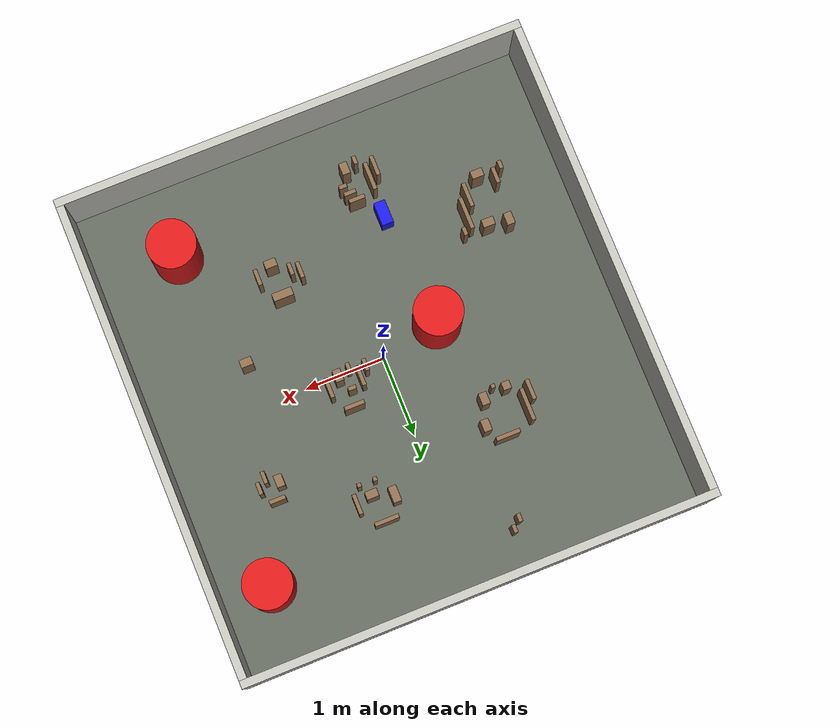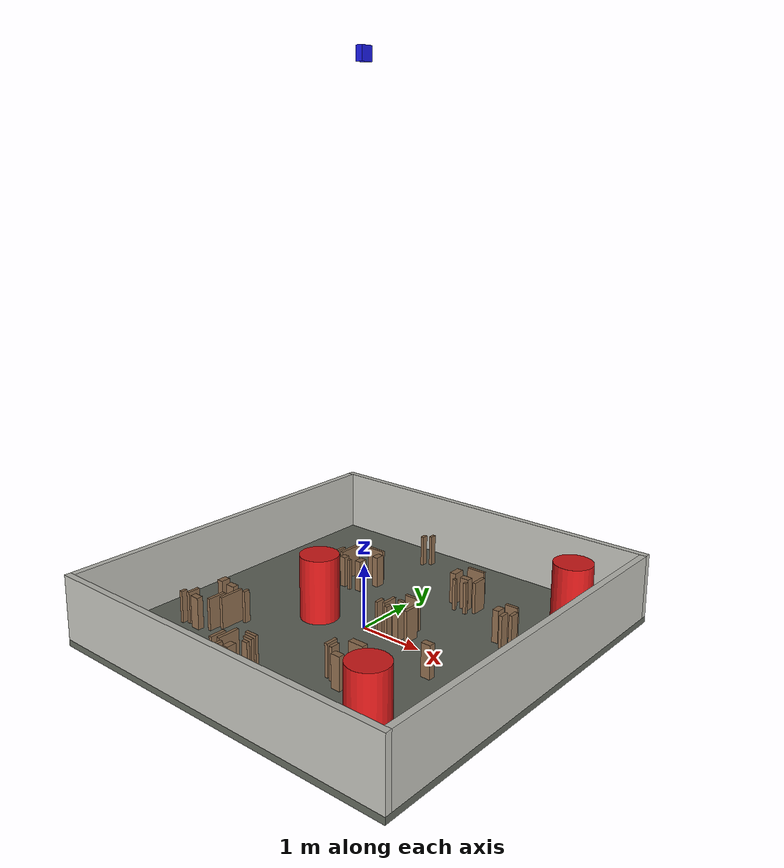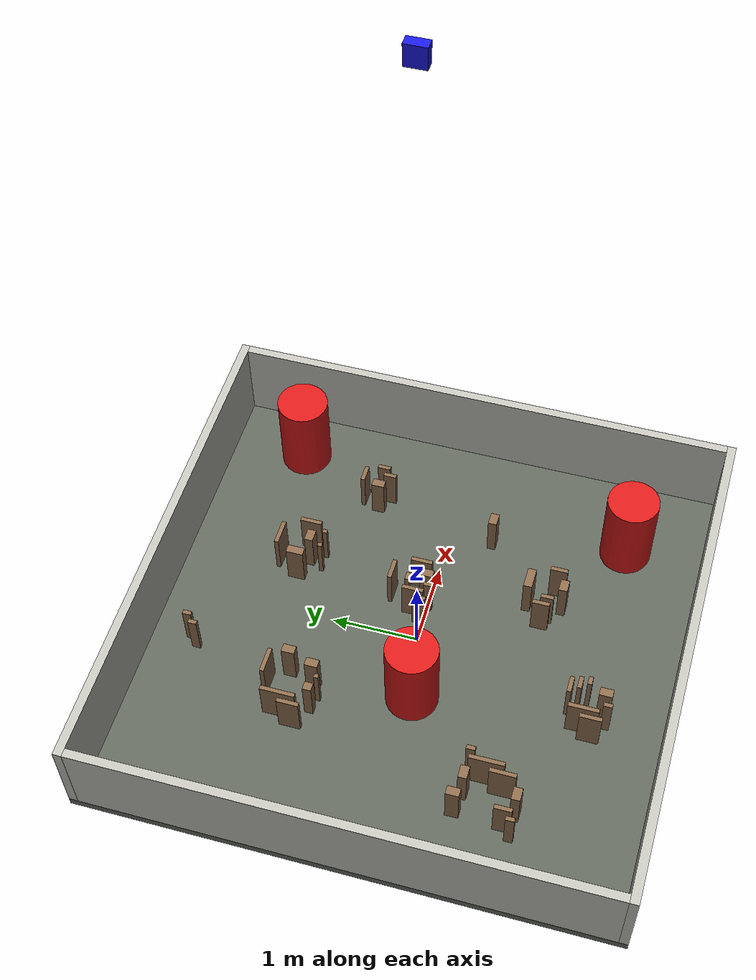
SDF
<?xml version="1.0" ?>
<!-- yellow_test.pgm SLAM 지도에서 자동 생성 -->
<!-- 방 내부 실측 2.85 x 2.95 m -> 확장 5.70 x 5.90 m (넓이 x4) -->
<!-- 로봇 스폰 권장 좌표: x=-2.350 y=-2.250  (SLAM 원점 대응점: -2.770, -2.830) -->
<sdf version="1.6">
  <world name="slam_room">
    <physics type="ode">
      <max_step_size>0.002</max_step_size>
      <real_time_update_rate>500</real_time_update_rate>
    </physics>
    <scene>
      <ambient>0.5 0.5 0.5 1</ambient>
      <background>0.7 0.75 0.8 1</background>
      <shadows>false</shadows>
    </scene>
    <include><uri>model://sun</uri></include>
    <gui><camera name='user_camera'>
      <pose>-5.13 -5.31 5.31 0 0.85 2.4</pose>
    </camera></gui>

    <model name='floor'>
      <static>true</static>
      <pose>0.0000 0.0000 -0.0500 0 0 0</pose>
      <link name='link'>
        <collision name='c'>
          <geometry><box><size>5.9000 6.1000 0.1000</size></box></geometry>
        </collision>
        <visual name='v'>
          <geometry><box><size>5.9000 6.1000 0.1000</size></box></geometry>
          <material>
            <ambient>0.38 0.40 0.36 1</ambient><diffuse>0.38 0.40 0.36 1</diffuse>
            <specular>0.1 0.1 0.1 1</specular>
          </material>
        </visual>
      </link>
    </model>
    <model name='wall_north'>
      <static>true</static>
      <pose>0.0000 3.0000 0.5000 0 0 0</pose>
      <link name='link'>
        <collision name='c'>
          <geometry><box><size>5.9000 0.1000 1.0000</size></box></geometry>
        </collision>
        <visual name='v'>
          <geometry><box><size>5.9000 0.1000 1.0000</size></box></geometry>
          <material>
            <ambient>0.75 0.75 0.72 1</ambient><diffuse>0.75 0.75 0.72 1</diffuse>
            <specular>0.1 0.1 0.1 1</specular>
          </material>
        </visual>
      </link>
    </model>
    <model name='wall_south'>
      <static>true</static>
      <pose>0.0000 -3.0000 0.5000 0 0 0</pose>
      <link name='link'>
        <collision name='c'>
          <geometry><box><size>5.9000 0.1000 1.0000</size></box></geometry>
        </collision>
        <visual name='v'>
          <geometry><box><size>5.9000 0.1000 1.0000</size></box></geometry>
          <material>
            <ambient>0.75 0.75 0.72 1</ambient><diffuse>0.75 0.75 0.72 1</diffuse>
            <specular>0.1 0.1 0.1 1</specular>
          </material>
        </visual>
      </link>
    </model>
    <model name='wall_east'>
      <static>true</static>
      <pose>2.9000 0.0000 0.5000 0 0 0</pose>
      <link name='link'>
        <collision name='c'>
          <geometry><box><size>0.1000 5.9000 1.0000</size></box></geometry>
        </collision>
        <visual name='v'>
          <geometry><box><size>0.1000 5.9000 1.0000</size></box></geometry>
          <material>
            <ambient>0.75 0.75 0.72 1</ambient><diffuse>0.75 0.75 0.72 1</diffuse>
            <specular>0.1 0.1 0.1 1</specular>
          </material>
        </visual>
      </link>
    </model>
    <model name='wall_west'>
      <static>true</static>
      <pose>-2.9000 0.0000 0.5000 0 0 0</pose>
      <link name='link'>
        <collision name='c'>
          <geometry><box><size>0.1000 5.9000 1.0000</size></box></geometry>
        </collision>
        <visual name='v'>
          <geometry><box><size>0.1000 5.9000 1.0000</size></box></geometry>
          <material>
            <ambient>0.75 0.75 0.72 1</ambient><diffuse>0.75 0.75 0.72 1</diffuse>
            <specular>0.1 0.1 0.1 1</specular>
          </material>
        </visual>
      </link>
    </model>
    <model name='obstacle_000'>
      <static>true</static>
      <pose>-0.6500 2.5000 0.2500 0 0 0</pose>
      <link name='link'>
        <collision name='c'>
          <geometry><box><size>0.0500 0.1000 0.5000</size></box></geometry>
        </collision>
        <visual name='v'>
          <geometry><box><size>0.0500 0.1000 0.5000</size></box></geometry>
          <material>
            <ambient>0.55 0.42 0.30 1</ambient><diffuse>0.55 0.42 0.30 1</diffuse>
            <specular>0.1 0.1 0.1 1</specular>
          </material>
        </visual>
      </link>
    </model>
    <model name='obstacle_001'>
      <static>true</static>
      <pose>-0.7500 2.4000 0.2500 0 0 0</pose>
      <link name='link'>
        <collision name='c'>
          <geometry><box><size>0.0500 0.1000 0.5000</size></box></geometry>
        </collision>
        <visual name='v'>
          <geometry><box><size>0.0500 0.1000 0.5000</size></box></geometry>
          <material>
            <ambient>0.55 0.42 0.30 1</ambient><diffuse>0.55 0.42 0.30 1</diffuse>
            <specular>0.1 0.1 0.1 1</specular>
          </material>
        </visual>
      </link>
    </model>
    <model name='obstacle_002'>
      <static>true</static>
      <pose>0.7000 1.8500 0.2500 0 0 0</pose>
      <link name='link'>
        <collision name='c'>
          <geometry><box><size>0.3000 0.0500 0.5000</size></box></geometry>
        </collision>
        <visual name='v'>
          <geometry><box><size>0.3000 0.0500 0.5000</size></box></geometry>
          <material>
            <ambient>0.55 0.42 0.30 1</ambient><diffuse>0.55 0.42 0.30 1</diffuse>
            <specular>0.1 0.1 0.1 1</specular>
          </material>
        </visual>
      </link>
    </model>
    <model name='obstacle_003'>
      <static>true</static>
      <pose>0.5000 1.6000 0.2500 0 0 0</pose>
      <link name='link'>
        <collision name='c'>
          <geometry><box><size>0.1000 0.2000 0.5000</size></box></geometry>
        </collision>
        <visual name='v'>
          <geometry><box><size>0.1000 0.2000 0.5000</size></box></geometry>
          <material>
            <ambient>0.55 0.42 0.30 1</ambient><diffuse>0.55 0.42 0.30 1</diffuse>
            <specular>0.1 0.1 0.1 1</specular>
          </material>
        </visual>
      </link>
    </model>
    <model name='obstacle_004'>
      <static>true</static>
      <pose>0.9500 1.5500 0.2500 0 0 0</pose>
      <link name='link'>
        <collision name='c'>
          <geometry><box><size>0.0500 0.2500 0.5000</size></box></geometry>
        </collision>
        <visual name='v'>
          <geometry><box><size>0.0500 0.2500 0.5000</size></box></geometry>
          <material>
            <ambient>0.55 0.42 0.30 1</ambient><diffuse>0.55 0.42 0.30 1</diffuse>
            <specular>0.1 0.1 0.1 1</specular>
          </material>
        </visual>
      </link>
    </model>
    <model name='obstacle_005'>
      <static>true</static>
      <pose>-1.3500 1.2000 0.2500 0 0 0</pose>
      <link name='link'>
        <collision name='c'>
          <geometry><box><size>0.0500 0.4000 0.5000</size></box></geometry>
        </collision>
        <visual name='v'>
          <geometry><box><size>0.0500 0.4000 0.5000</size></box></geometry>
          <material>
            <ambient>0.55 0.42 0.30 1</ambient><diffuse>0.55 0.42 0.30 1</diffuse>
            <specular>0.1 0.1 0.1 1</specular>
          </material>
        </visual>
      </link>
    </model>
    <model name='obstacle_006'>
      <static>true</static>
      <pose>0.7500 1.5000 0.2500 0 0 0</pose>
      <link name='link'>
        <collision name='c'>
          <geometry><box><size>0.1500 0.1000 0.5000</size></box></geometry>
        </collision>
        <visual name='v'>
          <geometry><box><size>0.1500 0.1000 0.5000</size></box></geometry>
          <material>
            <ambient>0.55 0.42 0.30 1</ambient><diffuse>0.55 0.42 0.30 1</diffuse>
            <specular>0.1 0.1 0.1 1</specular>
          </material>
        </visual>
      </link>
    </model>
    <model name='obstacle_007'>
      <static>true</static>
      <pose>-1.0000 1.4500 0.2500 0 0 0</pose>
      <link name='link'>
        <collision name='c'>
          <geometry><box><size>0.3000 0.0500 0.5000</size></box></geometry>
        </collision>
        <visual name='v'>
          <geometry><box><size>0.3000 0.0500 0.5000</size></box></geometry>
          <material>
            <ambient>0.55 0.42 0.30 1</ambient><diffuse>0.55 0.42 0.30 1</diffuse>
            <specular>0.1 0.1 0.1 1</specular>
          </material>
        </visual>
      </link>
    </model>
    <model name='obstacle_008'>
      <static>true</static>
      <pose>-0.8000 1.2500 0.2500 0 0 0</pose>
      <link name='link'>
        <collision name='c'>
          <geometry><box><size>0.1000 0.1500 0.5000</size></box></geometry>
        </collision>
        <visual name='v'>
          <geometry><box><size>0.1000 0.1500 0.5000</size></box></geometry>
          <material>
            <ambient>0.55 0.42 0.30 1</ambient><diffuse>0.55 0.42 0.30 1</diffuse>
            <specular>0.1 0.1 0.1 1</specular>
          </material>
        </visual>
      </link>
    </model>
    <model name='obstacle_009'>
      <static>true</static>
      <pose>0.6500 1.3500 0.2500 0 0 0</pose>
      <link name='link'>
        <collision name='c'>
          <geometry><box><size>0.0500 0.0500 0.5000</size></box></geometry>
        </collision>
        <visual name='v'>
          <geometry><box><size>0.0500 0.0500 0.5000</size></box></geometry>
          <material>
            <ambient>0.55 0.42 0.30 1</ambient><diffuse>0.55 0.42 0.30 1</diffuse>
            <specular>0.1 0.1 0.1 1</specular>
          </material>
        </visual>
      </link>
    </model>
    <model name='obstacle_010'>
      <static>true</static>
      <pose>0.8500 1.3500 0.2500 0 0 0</pose>
      <link name='link'>
        <collision name='c'>
          <geometry><box><size>0.0500 0.0500 0.5000</size></box></geometry>
        </collision>
        <visual name='v'>
          <geometry><box><size>0.0500 0.0500 0.5000</size></box></geometry>
          <material>
            <ambient>0.55 0.42 0.30 1</ambient><diffuse>0.55 0.42 0.30 1</diffuse>
            <specular>0.1 0.1 0.1 1</specular>
          </material>
        </visual>
      </link>
    </model>
    <model name='obstacle_011'>
      <static>true</static>
      <pose>-1.4500 1.0500 0.2500 0 0 0</pose>
      <link name='link'>
        <collision name='c'>
          <geometry><box><size>0.0500 0.2500 0.5000</size></box></geometry>
        </collision>
        <visual name='v'>
          <geometry><box><size>0.0500 0.2500 0.5000</size></box></geometry>
          <material>
            <ambient>0.55 0.42 0.30 1</ambient><diffuse>0.55 0.42 0.30 1</diffuse>
            <specular>0.1 0.1 0.1 1</specular>
          </material>
        </visual>
      </link>
    </model>
    <model name='obstacle_012'>
      <static>true</static>
      <pose>1.8000 1.1500 0.2500 0 0 0</pose>
      <link name='link'>
        <collision name='c'>
          <geometry><box><size>0.2000 0.0500 0.5000</size></box></geometry>
        </collision>
        <visual name='v'>
          <geometry><box><size>0.2000 0.0500 0.5000</size></box></geometry>
          <material>
            <ambient>0.55 0.42 0.30 1</ambient><diffuse>0.55 0.42 0.30 1</diffuse>
            <specular>0.1 0.1 0.1 1</specular>
          </material>
        </visual>
      </link>
    </model>
    <model name='obstacle_013'>
      <static>true</static>
      <pose>-0.9000 0.9500 0.2500 0 0 0</pose>
      <link name='link'>
        <collision name='c'>
          <geometry><box><size>0.1000 0.1500 0.5000</size></box></geometry>
        </collision>
        <visual name='v'>
          <geometry><box><size>0.1000 0.1500 0.5000</size></box></geometry>
          <material>
            <ambient>0.55 0.42 0.30 1</ambient><diffuse>0.55 0.42 0.30 1</diffuse>
            <specular>0.1 0.1 0.1 1</specular>
          </material>
        </visual>
      </link>
    </model>
    <model name='obstacle_014'>
      <static>true</static>
      <pose>1.7000 0.9500 0.2500 0 0 0</pose>
      <link name='link'>
        <collision name='c'>
          <geometry><box><size>0.1000 0.1500 0.5000</size></box></geometry>
        </collision>
        <visual name='v'>
          <geometry><box><size>0.1000 0.1500 0.5000</size></box></geometry>
          <material>
            <ambient>0.55 0.42 0.30 1</ambient><diffuse>0.55 0.42 0.30 1</diffuse>
            <specular>0.1 0.1 0.1 1</specular>
          </material>
        </visual>
      </link>
    </model>
    <model name='obstacle_015'>
      <static>true</static>
      <pose>1.9500 0.9500 0.2500 0 0 0</pose>
      <link name='link'>
        <collision name='c'>
          <geometry><box><size>0.0500 0.1500 0.5000</size></box></geometry>
        </collision>
        <visual name='v'>
          <geometry><box><size>0.0500 0.1500 0.5000</size></box></geometry>
          <material>
            <ambient>0.55 0.42 0.30 1</ambient><diffuse>0.55 0.42 0.30 1</diffuse>
            <specular>0.1 0.1 0.1 1</specular>
          </material>
        </visual>
      </link>
    </model>
    <model name='obstacle_016'>
      <static>true</static>
      <pose>-1.2000 0.9000 0.2500 0 0 0</pose>
      <link name='link'>
        <collision name='c'>
          <geometry><box><size>0.1000 0.1000 0.5000</size></box></geometry>
        </collision>
        <visual name='v'>
          <geometry><box><size>0.1000 0.1000 0.5000</size></box></geometry>
          <material>
            <ambient>0.55 0.42 0.30 1</ambient><diffuse>0.55 0.42 0.30 1</diffuse>
            <specular>0.1 0.1 0.1 1</specular>
          </material>
        </visual>
      </link>
    </model>
    <model name='obstacle_017'>
      <static>true</static>
      <pose>1.8500 0.8500 0.2500 0 0 0</pose>
      <link name='link'>
        <collision name='c'>
          <geometry><box><size>0.0500 0.1500 0.5000</size></box></geometry>
        </collision>
        <visual name='v'>
          <geometry><box><size>0.0500 0.1500 0.5000</size></box></geometry>
          <material>
            <ambient>0.55 0.42 0.30 1</ambient><diffuse>0.55 0.42 0.30 1</diffuse>
            <specular>0.1 0.1 0.1 1</specular>
          </material>
        </visual>
      </link>
    </model>
    <model name='obstacle_018'>
      <static>true</static>
      <pose>-1.0500 0.8500 0.2500 0 0 0</pose>
      <link name='link'>
        <collision name='c'>
          <geometry><box><size>0.0500 0.0500 0.5000</size></box></geometry>
        </collision>
        <visual name='v'>
          <geometry><box><size>0.0500 0.0500 0.5000</size></box></geometry>
          <material>
            <ambient>0.55 0.42 0.30 1</ambient><diffuse>0.55 0.42 0.30 1</diffuse>
            <specular>0.1 0.1 0.1 1</specular>
          </material>
        </visual>
      </link>
    </model>
    <model name='obstacle_019'>
      <static>true</static>
      <pose>0.5500 0.4500 0.2500 0 0 0</pose>
      <link name='link'>
        <collision name='c'>
          <geometry><box><size>0.2500 0.0500 0.5000</size></box></geometry>
        </collision>
        <visual name='v'>
          <geometry><box><size>0.2500 0.0500 0.5000</size></box></geometry>
          <material>
            <ambient>0.55 0.42 0.30 1</ambient><diffuse>0.55 0.42 0.30 1</diffuse>
            <specular>0.1 0.1 0.1 1</specular>
          </material>
        </visual>
      </link>
    </model>
    <model name='obstacle_020'>
      <static>true</static>
      <pose>0.3500 0.1500 0.2500 0 0 0</pose>
      <link name='link'>
        <collision name='c'>
          <geometry><box><size>0.0500 0.2500 0.5000</size></box></geometry>
        </collision>
        <visual name='v'>
          <geometry><box><size>0.0500 0.2500 0.5000</size></box></geometry>
          <material>
            <ambient>0.55 0.42 0.30 1</ambient><diffuse>0.55 0.42 0.30 1</diffuse>
            <specular>0.1 0.1 0.1 1</specular>
          </material>
        </visual>
      </link>
    </model>
    <model name='obstacle_021'>
      <static>true</static>
      <pose>0.7500 0.1500 0.2500 0 0 0</pose>
      <link name='link'>
        <collision name='c'>
          <geometry><box><size>0.0500 0.2500 0.5000</size></box></geometry>
        </collision>
        <visual name='v'>
          <geometry><box><size>0.0500 0.2500 0.5000</size></box></geometry>
          <material>
            <ambient>0.55 0.42 0.30 1</ambient><diffuse>0.55 0.42 0.30 1</diffuse>
            <specular>0.1 0.1 0.1 1</specular>
          </material>
        </visual>
      </link>
    </model>
    <model name='obstacle_022'>
      <static>true</static>
      <pose>0.5000 0.2500 0.2500 0 0 0</pose>
      <link name='link'>
        <collision name='c'>
          <geometry><box><size>0.1000 0.0500 0.5000</size></box></geometry>
        </collision>
        <visual name='v'>
          <geometry><box><size>0.1000 0.0500 0.5000</size></box></geometry>
          <material>
            <ambient>0.55 0.42 0.30 1</ambient><diffuse>0.55 0.42 0.30 1</diffuse>
            <specular>0.1 0.1 0.1 1</specular>
          </material>
        </visual>
      </link>
    </model>
    <model name='obstacle_023'>
      <static>true</static>
      <pose>0.2500 0.0500 0.2500 0 0 0</pose>
      <link name='link'>
        <collision name='c'>
          <geometry><box><size>0.0500 0.1500 0.5000</size></box></geometry>
        </collision>
        <visual name='v'>
          <geometry><box><size>0.0500 0.1500 0.5000</size></box></geometry>
          <material>
            <ambient>0.55 0.42 0.30 1</ambient><diffuse>0.55 0.42 0.30 1</diffuse>
            <specular>0.1 0.1 0.1 1</specular>
          </material>
        </visual>
      </link>
    </model>
    <model name='obstacle_024'>
      <static>true</static>
      <pose>0.6000 0.0500 0.2500 0 0 0</pose>
      <link name='link'>
        <collision name='c'>
          <geometry><box><size>0.1000 0.1500 0.5000</size></box></geometry>
        </collision>
        <visual name='v'>
          <geometry><box><size>0.1000 0.1500 0.5000</size></box></geometry>
          <material>
            <ambient>0.55 0.42 0.30 1</ambient><diffuse>0.55 0.42 0.30 1</diffuse>
            <specular>0.1 0.1 0.1 1</specular>
          </material>
        </visual>
      </link>
    </model>
    <model name='obstacle_025'>
      <static>true</static>
      <pose>0.4500 0.0000 0.2500 0 0 0</pose>
      <link name='link'>
        <collision name='c'>
          <geometry><box><size>0.0500 0.1000 0.5000</size></box></geometry>
        </collision>
        <visual name='v'>
          <geometry><box><size>0.0500 0.1000 0.5000</size></box></geometry>
          <material>
            <ambient>0.55 0.42 0.30 1</ambient><diffuse>0.55 0.42 0.30 1</diffuse>
            <specular>0.1 0.1 0.1 1</specular>
          </material>
        </visual>
      </link>
    </model>
    <model name='obstacle_026'>
      <static>true</static>
      <pose>1.5500 -0.5000 0.2500 0 0 0</pose>
      <link name='link'>
        <collision name='c'>
          <geometry><box><size>0.1500 0.1000 0.5000</size></box></geometry>
        </collision>
        <visual name='v'>
          <geometry><box><size>0.1500 0.1000 0.5000</size></box></geometry>
          <material>
            <ambient>0.55 0.42 0.30 1</ambient><diffuse>0.55 0.42 0.30 1</diffuse>
            <specular>0.1 0.1 0.1 1</specular>
          </material>
        </visual>
      </link>
    </model>
    <model name='obstacle_027'>
      <static>true</static>
      <pose>-2.0000 -0.9500 0.2500 0 0 0</pose>
      <link name='link'>
        <collision name='c'>
          <geometry><box><size>0.1000 0.1500 0.5000</size></box></geometry>
        </collision>
        <visual name='v'>
          <geometry><box><size>0.1000 0.1500 0.5000</size></box></geometry>
          <material>
            <ambient>0.55 0.42 0.30 1</ambient><diffuse>0.55 0.42 0.30 1</diffuse>
            <specular>0.1 0.1 0.1 1</specular>
          </material>
        </visual>
      </link>
    </model>
    <model name='obstacle_028'>
      <static>true</static>
      <pose>-1.5500 -1.2000 0.2500 0 0 0</pose>
      <link name='link'>
        <collision name='c'>
          <geometry><box><size>0.0500 0.4000 0.5000</size></box></geometry>
        </collision>
        <visual name='v'>
          <geometry><box><size>0.0500 0.4000 0.5000</size></box></geometry>
          <material>
            <ambient>0.55 0.42 0.30 1</ambient><diffuse>0.55 0.42 0.30 1</diffuse>
            <specular>0.1 0.1 0.1 1</specular>
          </material>
        </visual>
      </link>
    </model>
    <model name='obstacle_029'>
      <static>true</static>
      <pose>-1.7500 -1.0000 0.2500 0 0 0</pose>
      <link name='link'>
        <collision name='c'>
          <geometry><box><size>0.1500 0.1000 0.5000</size></box></geometry>
        </collision>
        <visual name='v'>
          <geometry><box><size>0.1500 0.1000 0.5000</size></box></geometry>
          <material>
            <ambient>0.55 0.42 0.30 1</ambient><diffuse>0.55 0.42 0.30 1</diffuse>
            <specular>0.1 0.1 0.1 1</specular>
          </material>
        </visual>
      </link>
    </model>
    <model name='obstacle_030'>
      <static>true</static>
      <pose>-1.4500 -1.0000 0.2500 0 0 0</pose>
      <link name='link'>
        <collision name='c'>
          <geometry><box><size>0.0500 0.1000 0.5000</size></box></geometry>
        </collision>
        <visual name='v'>
          <geometry><box><size>0.0500 0.1000 0.5000</size></box></geometry>
          <material>
            <ambient>0.55 0.42 0.30 1</ambient><diffuse>0.55 0.42 0.30 1</diffuse>
            <specular>0.1 0.1 0.1 1</specular>
          </material>
        </visual>
      </link>
    </model>
    <model name='obstacle_031'>
      <static>true</static>
      <pose>0.8500 -1.1000 0.2500 0 0 0</pose>
      <link name='link'>
        <collision name='c'>
          <geometry><box><size>0.2500 0.1000 0.5000</size></box></geometry>
        </collision>
        <visual name='v'>
          <geometry><box><size>0.2500 0.1000 0.5000</size></box></geometry>
          <material>
            <ambient>0.55 0.42 0.30 1</ambient><diffuse>0.55 0.42 0.30 1</diffuse>
            <specular>0.1 0.1 0.1 1</specular>
          </material>
        </visual>
      </link>
    </model>
    <model name='obstacle_032'>
      <static>true</static>
      <pose>-1.6500 -1.4000 0.2500 0 0 0</pose>
      <link name='link'>
        <collision name='c'>
          <geometry><box><size>0.0500 0.3000 0.5000</size></box></geometry>
        </collision>
        <visual name='v'>
          <geometry><box><size>0.0500 0.3000 0.5000</size></box></geometry>
          <material>
            <ambient>0.55 0.42 0.30 1</ambient><diffuse>0.55 0.42 0.30 1</diffuse>
            <specular>0.1 0.1 0.1 1</specular>
          </material>
        </visual>
      </link>
    </model>
    <model name='obstacle_033'>
      <static>true</static>
      <pose>0.5500 -1.3000 0.2500 0 0 0</pose>
      <link name='link'>
        <collision name='c'>
          <geometry><box><size>0.0500 0.2000 0.5000</size></box></geometry>
        </collision>
        <visual name='v'>
          <geometry><box><size>0.0500 0.2000 0.5000</size></box></geometry>
          <material>
            <ambient>0.55 0.42 0.30 1</ambient><diffuse>0.55 0.42 0.30 1</diffuse>
            <specular>0.1 0.1 0.1 1</specular>
          </material>
        </visual>
      </link>
    </model>
    <model name='obstacle_034'>
      <static>true</static>
      <pose>0.6500 -1.3500 0.2500 0 0 0</pose>
      <link name='link'>
        <collision name='c'>
          <geometry><box><size>0.0500 0.1500 0.5000</size></box></geometry>
        </collision>
        <visual name='v'>
          <geometry><box><size>0.0500 0.1500 0.5000</size></box></geometry>
          <material>
            <ambient>0.55 0.42 0.30 1</ambient><diffuse>0.55 0.42 0.30 1</diffuse>
            <specular>0.1 0.1 0.1 1</specular>
          </material>
        </visual>
      </link>
    </model>
    <model name='obstacle_035'>
      <static>true</static>
      <pose>1.0500 -1.4000 0.2500 0 0 0</pose>
      <link name='link'>
        <collision name='c'>
          <geometry><box><size>0.0500 0.2000 0.5000</size></box></geometry>
        </collision>
        <visual name='v'>
          <geometry><box><size>0.0500 0.2000 0.5000</size></box></geometry>
          <material>
            <ambient>0.55 0.42 0.30 1</ambient><diffuse>0.55 0.42 0.30 1</diffuse>
            <specular>0.1 0.1 0.1 1</specular>
          </material>
        </visual>
      </link>
    </model>
    <model name='obstacle_036'>
      <static>true</static>
      <pose>-2.0500 -1.5000 0.2500 0 0 0</pose>
      <link name='link'>
        <collision name='c'>
          <geometry><box><size>0.0500 0.2000 0.5000</size></box></geometry>
        </collision>
        <visual name='v'>
          <geometry><box><size>0.0500 0.2000 0.5000</size></box></geometry>
          <material>
            <ambient>0.55 0.42 0.30 1</ambient><diffuse>0.55 0.42 0.30 1</diffuse>
            <specular>0.1 0.1 0.1 1</specular>
          </material>
        </visual>
      </link>
    </model>
    <model name='obstacle_037'>
      <static>true</static>
      <pose>0.8500 -1.5000 0.2500 0 0 0</pose>
      <link name='link'>
        <collision name='c'>
          <geometry><box><size>0.1500 0.1000 0.5000</size></box></geometry>
        </collision>
        <visual name='v'>
          <geometry><box><size>0.1500 0.1000 0.5000</size></box></geometry>
          <material>
            <ambient>0.55 0.42 0.30 1</ambient><diffuse>0.55 0.42 0.30 1</diffuse>
            <specular>0.1 0.1 0.1 1</specular>
          </material>
        </visual>
      </link>
    </model>
    <model name='obstacle_038'>
      <static>true</static>
      <pose>-2.1500 -1.6000 0.2500 0 0 0</pose>
      <link name='link'>
        <collision name='c'>
          <geometry><box><size>0.0500 0.1000 0.5000</size></box></geometry>
        </collision>
        <visual name='v'>
          <geometry><box><size>0.0500 0.1000 0.5000</size></box></geometry>
          <material>
            <ambient>0.55 0.42 0.30 1</ambient><diffuse>0.55 0.42 0.30 1</diffuse>
            <specular>0.1 0.1 0.1 1</specular>
          </material>
        </visual>
      </link>
    </model>
    <model name='obstacle_039'>
      <static>true</static>
      <pose>-1.8500 -1.6000 0.2500 0 0 0</pose>
      <link name='link'>
        <collision name='c'>
          <geometry><box><size>0.1500 0.1000 0.5000</size></box></geometry>
        </collision>
        <visual name='v'>
          <geometry><box><size>0.1500 0.1000 0.5000</size></box></geometry>
          <material>
            <ambient>0.55 0.42 0.30 1</ambient><diffuse>0.55 0.42 0.30 1</diffuse>
            <specular>0.1 0.1 0.1 1</specular>
          </material>
        </visual>
      </link>
    </model>
    <model name='obstacle_040'>
      <static>true</static>
      <pose>-0.6500 -2.0500 0.2500 0 0 0</pose>
      <link name='link'>
        <collision name='c'>
          <geometry><box><size>0.0500 0.3500 0.5000</size></box></geometry>
        </collision>
        <visual name='v'>
          <geometry><box><size>0.0500 0.3500 0.5000</size></box></geometry>
          <material>
            <ambient>0.55 0.42 0.30 1</ambient><diffuse>0.55 0.42 0.30 1</diffuse>
            <specular>0.1 0.1 0.1 1</specular>
          </material>
        </visual>
      </link>
    </model>
    <model name='obstacle_041'>
      <static>true</static>
      <pose>-0.4000 -1.8500 0.2500 0 0 0</pose>
      <link name='link'>
        <collision name='c'>
          <geometry><box><size>0.2000 0.0500 0.5000</size></box></geometry>
        </collision>
        <visual name='v'>
          <geometry><box><size>0.2000 0.0500 0.5000</size></box></geometry>
          <material>
            <ambient>0.55 0.42 0.30 1</ambient><diffuse>0.55 0.42 0.30 1</diffuse>
            <specular>0.1 0.1 0.1 1</specular>
          </material>
        </visual>
      </link>
    </model>
    <model name='obstacle_042'>
      <static>true</static>
      <pose>-0.7500 -2.1500 0.2500 0 0 0</pose>
      <link name='link'>
        <collision name='c'>
          <geometry><box><size>0.0500 0.2500 0.5000</size></box></geometry>
        </collision>
        <visual name='v'>
          <geometry><box><size>0.0500 0.2500 0.5000</size></box></geometry>
          <material>
            <ambient>0.55 0.42 0.30 1</ambient><diffuse>0.55 0.42 0.30 1</diffuse>
            <specular>0.1 0.1 0.1 1</specular>
          </material>
        </visual>
      </link>
    </model>
    <model name='obstacle_043'>
      <static>true</static>
      <pose>-0.3500 -1.9500 0.2500 0 0 0</pose>
      <link name='link'>
        <collision name='c'>
          <geometry><box><size>0.1500 0.0500 0.5000</size></box></geometry>
        </collision>
        <visual name='v'>
          <geometry><box><size>0.1500 0.0500 0.5000</size></box></geometry>
          <material>
            <ambient>0.55 0.42 0.30 1</ambient><diffuse>0.55 0.42 0.30 1</diffuse>
            <specular>0.1 0.1 0.1 1</specular>
          </material>
        </visual>
      </link>
    </model>
    <model name='obstacle_044'>
      <static>true</static>
      <pose>-0.3000 -2.0500 0.2500 0 0 0</pose>
      <link name='link'>
        <collision name='c'>
          <geometry><box><size>0.1000 0.0500 0.5000</size></box></geometry>
        </collision>
        <visual name='v'>
          <geometry><box><size>0.1000 0.0500 0.5000</size></box></geometry>
          <material>
            <ambient>0.55 0.42 0.30 1</ambient><diffuse>0.55 0.42 0.30 1</diffuse>
            <specular>0.1 0.1 0.1 1</specular>
          </material>
        </visual>
      </link>
    </model>
    <model name='obstacle_045'>
      <static>true</static>
      <pose>-0.4000 -2.2500 0.2500 0 0 0</pose>
      <link name='link'>
        <collision name='c'>
          <geometry><box><size>0.1000 0.1500 0.5000</size></box></geometry>
        </collision>
        <visual name='v'>
          <geometry><box><size>0.1000 0.1500 0.5000</size></box></geometry>
          <material>
            <ambient>0.55 0.42 0.30 1</ambient><diffuse>0.55 0.42 0.30 1</diffuse>
            <specular>0.1 0.1 0.1 1</specular>
          </material>
        </visual>
      </link>
    </model>
    <model name='obstacle_046'>
      <static>true</static>
      <pose>-0.5500 -2.3000 0.2500 0 0 0</pose>
      <link name='link'>
        <collision name='c'>
          <geometry><box><size>0.0500 0.1000 0.5000</size></box></geometry>
        </collision>
        <visual name='v'>
          <geometry><box><size>0.0500 0.1000 0.5000</size></box></geometry>
          <material>
            <ambient>0.55 0.42 0.30 1</ambient><diffuse>0.55 0.42 0.30 1</diffuse>
            <specular>0.1 0.1 0.1 1</specular>
          </material>
        </visual>
      </link>
    </model>
    <model name='target_spartina'>
      <static>true</static>
      <pose>-0.7500 -0.1500 0.5000 0 0 0</pose>
      <link name='link'>
        <collision name='c'>
          <geometry><cylinder><radius>0.3</radius><length>1.0</length></cylinder></geometry>
        </collision>
        <visual name='v'>
          <geometry><cylinder><radius>0.3</radius><length>1.0</length></cylinder></geometry>
          <material><ambient>0.85 0.10 0.10 1</ambient><diffuse>0.85 0.10 0.10 1</diffuse></material>
        </visual>
      </link>
    </model>
    <model name='target_spartina_2'>
      <static>true</static>
      <pose>2.2500 2.0500 0.5000 0 0 0</pose>
      <link name='link'>
        <collision name='c'>
          <geometry><cylinder><radius>0.3</radius><length>1.0</length></cylinder></geometry>
        </collision>
        <visual name='v'>
          <geometry><cylinder><radius>0.3</radius><length>1.0</length></cylinder></geometry>
          <material><ambient>0.85 0.10 0.10 1</ambient><diffuse>0.85 0.10 0.10 1</diffuse></material>
        </visual>
      </link>
    </model>
    <model name='target_spartina_3'>
      <static>true</static>
      <pose>1.8500 -2.0500 0.5000 0 0 0</pose>
      <link name='link'>
        <collision name='c'>
          <geometry><cylinder><radius>0.3</radius><length>1.0</length></cylinder></geometry>
        </collision>
        <visual name='v'>
          <geometry><cylinder><radius>0.3</radius><length>1.0</length></cylinder></geometry>
          <material><ambient>0.85 0.10 0.10 1</ambient><diffuse>0.85 0.10 0.10 1</diffuse></material>
        </visual>
      </link>
    </model>
    <!-- 드론 카메라: 원점 상공 8m, 수직 하방 -->
    <!-- spartina_world.world 에서 그대로 이식. 토픽 /drone/image_raw -->
    <model name="drone_camera">
      <static>true</static>
      <pose>0 0 8 0 1.5708 0</pose>
      <link name="camera_link">
        <visual name="visual">
          <geometry><box><size>0.2 0.2 0.1</size></box></geometry>
          <material>
            <ambient>0.1 0.1 0.8 1</ambient>
            <diffuse>0.1 0.1 0.9 1</diffuse>
          </material>
        </visual>
        <sensor type="camera" name="drone_camera_sensor">
          <update_rate>10</update_rate>
          <always_on>true</always_on>
          <camera>
            <horizontal_fov>1.047</horizontal_fov>
            <image><width>640</width><height>480</height><format>R8G8B8</format></image>
            <clip><near>0.1</near><far>100</far></clip>
          </camera>
          <plugin name="drone_camera_controller" filename="libgazebo_ros_camera.so">
            <camera_name>drone</camera_name>
            <frame_name>drone_camera_optical</frame_name>
          </plugin>
        </sensor>
      </link>
    </model>

  </world>
</sdf>
